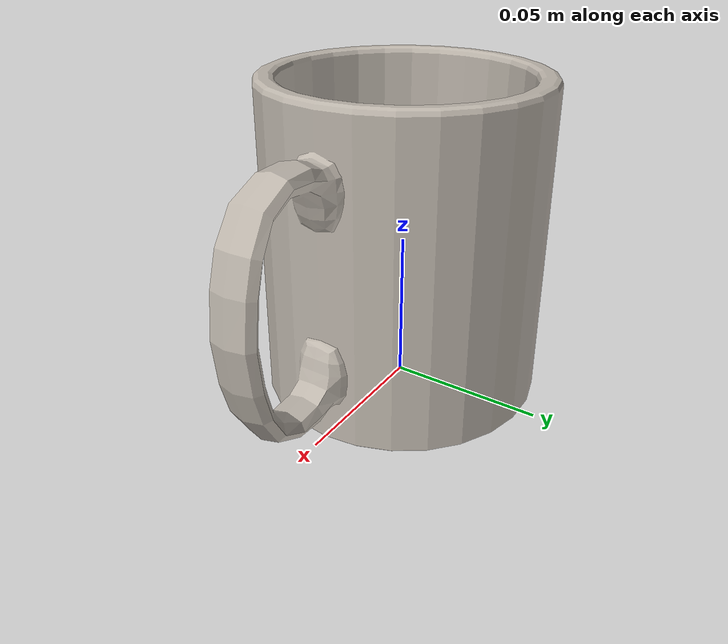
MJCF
<?xml version="1.0" encoding="utf-8"?>
<mujoco model="mug">
  <compiler angle="radian" meshdir="assets" texturedir="assets" autolimits="true"/>
  <asset>
    <texture type="2d" name="mug" file="mug.png"/>
    <material name="mug" specular="0.8" shininess="0.5" rgba="1 1 1 1" texture="mug"/>
    <mesh file="mug.obj"/>
    <mesh file="mug_collision_001.obj"/>
    <mesh file="mug_collision_002.obj"/>
    <mesh file="mug_collision_003.obj"/>
    <mesh file="mug_collision_004.obj"/>
    <mesh file="mug_collision_005.obj"/>
    <mesh file="mug_collision_006.obj"/>
    <mesh file="mug_collision_007.obj"/>
    <mesh file="mug_collision_008.obj"/>
    <mesh file="mug_collision_009.obj"/>
    <mesh file="mug_collision_010.obj"/>
    <mesh file="mug_collision_011.obj"/>
    <mesh file="mug_collision_012.obj"/>
    <mesh file="mug_collision_013.obj"/>
    <mesh file="mug_collision_014.obj"/>
    <mesh file="mug_collision_015.obj"/>
    <mesh file="mug_collision_016.obj"/>
    <mesh file="mug_collision_017.obj"/>
    <mesh file="mug_collision_018.obj"/>
  </asset>
  <default>
    <default class="mug">
      <default class="visual">
        <geom type="mesh" mass="0.3" contype="0" conaffinity="0" group="2" euler="1.5708 0 0" material="mug"/>
      </default>
      <default class="collision">
        <geom type="mesh" mass="0" group="3" euler="1.5708 0 0" solimp="0.95 0.99 0.001" solref="0.004 1"/>
      </default>
    </default>
  </default>
  <worldbody>
    <body name="mug" childclass="mug">
      <geom name="mesh" mesh="mug" class="visual"/>
      <geom name="collider_001" mesh="mug_collision_001" class="collision"/>
      <geom name="collider_002" mesh="mug_collision_002" class="collision"/>
      <geom name="collider_003" mesh="mug_collision_003" class="collision"/>
      <geom name="collider_004" mesh="mug_collision_004" class="collision"/>
      <geom name="collider_005" mesh="mug_collision_005" class="collision"/>
      <geom name="collider_006" mesh="mug_collision_006" class="collision"/>
      <geom name="collider_007" mesh="mug_collision_007" class="collision"/>
      <geom name="collider_008" mesh="mug_collision_008" class="collision"/>
      <geom name="collider_009" mesh="mug_collision_009" class="collision"/>
      <geom name="collider_010" mesh="mug_collision_010" class="collision"/>
      <geom name="collider_011" mesh="mug_collision_011" class="collision"/>
      <geom name="collider_012" mesh="mug_collision_012" class="collision"/>
      <geom name="collider_013" mesh="mug_collision_013" class="collision"/>
      <geom name="collider_014" mesh="mug_collision_014" class="collision"/>
      <geom name="collider_015" mesh="mug_collision_015" class="collision"/>
      <geom name="collider_016" mesh="mug_collision_016" class="collision"/>
      <geom name="collider_017" mesh="mug_collision_017" class="collision"/>
      <geom name="collider_018" mesh="mug_collision_018" class="collision"/>
    </body>
  </worldbody>
</mujoco>
